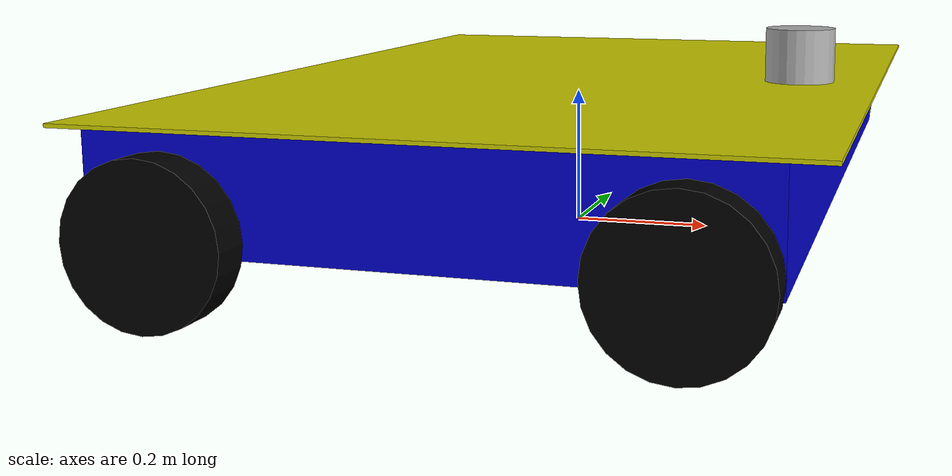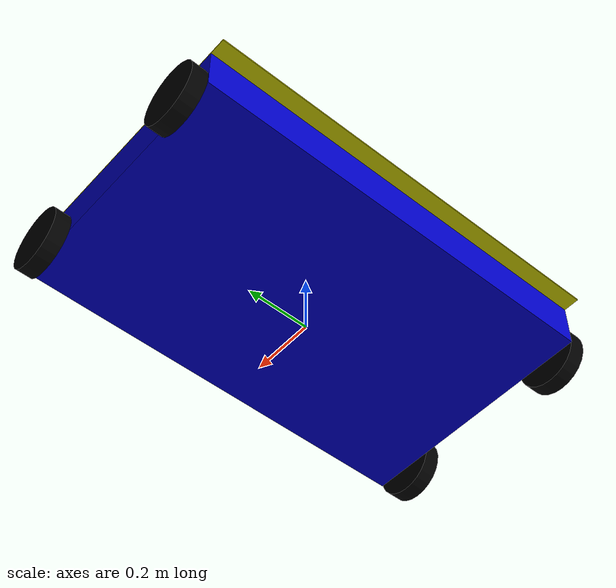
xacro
<?xml version="1.0"?>
<robot name="fourwheeler" xmlns:xacro="http://www.ros.org/wiki/xacro">

    <!-- constants; original values are in comments -->

    <xacro:property name="base_width" value="1.32"/>
    <xacro:property name="base_length" value="0.8"/>
    <xacro:property name="base_height" value="0.14"/>
    <xacro:property name="wheel_width" value="0.05"/>
    <xacro:property name="lowrider" value="0"/>
    <xacro:property name="wheel_radius" value="0.1"/>

    <!-- calculated parameters -->

    <xacro:property name="half_track" value="${base_width/2 + wheel_width/2}"/>
    <xacro:property name="wheel_axis_z" value="${lowrider-(base_height/2 - 0.02)}"/>

    <!-- model itself -->

    <!-- invisible point at "floor" for driving model -->
    <link name="base_footprint"></link>
    <joint name="base_to_base_footprint" type="fixed">
        <parent link="base_footprint" />
        <child link="base_link" />
        <origin xyz="0 0 ${wheel_radius - wheel_axis_z}" />
    </joint>

    <link name="base_link">
        <visual>
            <geometry>
            <box size="${base_length} ${base_width} ${base_height}" />
            </geometry>
            <material name="blue">
            <color rgba="0 0 0.8 1" />
            </material>
        </visual>
    </link>

    <xacro:macro name="wheel" params="wheel_name reflect_y reflect_x">

        <link name="${wheel_name}">
            <visual>
                <geometry>
                <cylinder length="${wheel_width}" radius="${wheel_radius}" />
                </geometry>
                <material name="black">
                <color rgba="0 0 0 1" />
                </material>
            </visual>
        </link>

        <joint name="${wheel_name}_to_base" type="continuous">
            <parent link="base_link" />
            <child link="${wheel_name}" />
            <origin xyz="${reflect_x * (base_length/2 - wheel_radius)} ${reflect_y * half_track} ${wheel_axis_z}" rpy="1.57 0 0" />
            <axis xyz="0 0 1" />
        </joint>

    </xacro:macro>

    <xacro:wheel wheel_name="front_left_wheel" reflect_y="1" reflect_x="1"/>
    <xacro:wheel wheel_name="front_right_wheel" reflect_y="-1" reflect_x="1"/>
    <xacro:wheel wheel_name="rear_left_wheel" reflect_y="1" reflect_x="-1"/>
    <xacro:wheel wheel_name="rear_right_wheel" reflect_y="-1" reflect_x="-1"/>

    <link name="hood">
        <visual>
            <geometry>
            <box size="${base_length + 0.1} ${base_width} 0.005" />
            </geometry>
            <material name="yellow">
            <color rgba="0.8 0.8 0 1" />
            </material>
        </visual>
    </link>

    <joint name="hood_to_base" type="fixed">
        <parent link="base_link" />
        <child link="hood" />
        <origin xyz="0 0 0.0725" />
    </joint>

    <link name="lidar">
        <visual>
            <geometry>
            <cylinder length="0.08" radius="0.05" />
            </geometry>
            <material name="grey">
            <color rgba="0.7 0.7 0.7 1" />
            </material>
        </visual>
    </link>

    <joint name="lidar_to_hood" type="continuous">
        <parent link="hood" />
        <child link="lidar" />
        <origin xyz="${base_length/2 - 0.065} 0 0.04" rpy="0 0 0" />
        <axis xyz="0 0 1" />
    </joint>

</robot>
